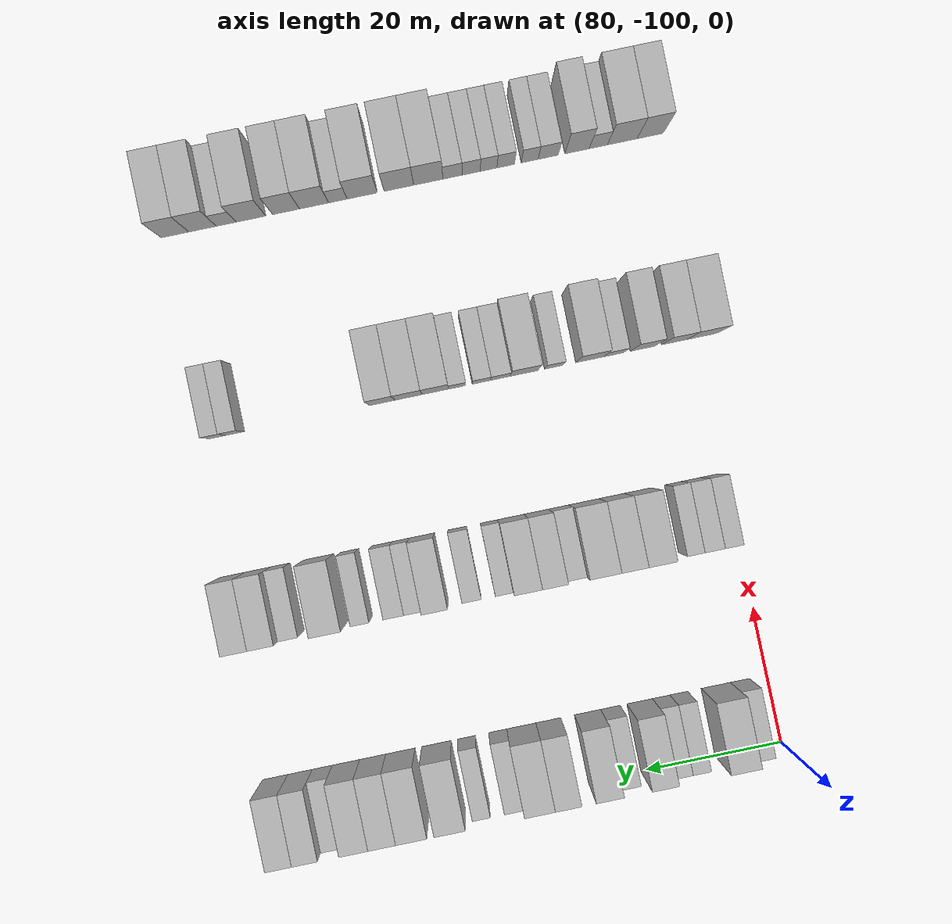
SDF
<sdf version="1.6">
 <world name="default">
  <model name="building_538">
   <static>1</static>
   <pose>85.0000 -95.9426 0 0.000000 0.000000 0.000000</pose>
   <link name="link">
    <pose>0 0 3.00 0 0 0</pose>
    <collision name="collision"><geometry><box><size>10.0000 2.8187 6.0000</size></box></geometry></collision>
    <visual name="visual">
     <cast_shadows>0</cast_shadows>
     <geometry><box><size>10.0000 2.8187 6.0000</size></box></geometry>
     <material>
      <script>
       <uri>model://HANNAS_wall/materials/scripts</uri>
       <uri>model://HANNAS_wall/materials/textures</uri>
       <name>vrc/HANNAS_wall</name>
      </script>
     </material>
    </visual>
   </link>
  </model>
  <model name="building_539">
   <static>1</static>
   <pose>85.0000 -92.3601 0 0.000000 0.000000 0.000000</pose>
   <link name="link">
    <pose>0 0 4.50 0 0 0</pose>
    <collision name="collision"><geometry><box><size>10.0000 4.3463 9.0000</size></box></geometry></collision>
    <visual name="visual">
     <cast_shadows>0</cast_shadows>
     <geometry><box><size>10.0000 4.3463 9.0000</size></box></geometry>
     <material>
      <script>
       <uri>model://HANNAS_wall/materials/scripts</uri>
       <uri>model://HANNAS_wall/materials/textures</uri>
       <name>vrc/HANNAS_wall</name>
      </script>
     </material>
    </visual>
   </link>
  </model>
  <model name="building_540">
   <static>1</static>
   <pose>85.0000 -86.8784 0 0.000000 0.000000 0.000000</pose>
   <link name="link">
    <pose>0 0 3.00 0 0 0</pose>
    <collision name="collision"><geometry><box><size>10.0000 2.6170 6.0000</size></box></geometry></collision>
    <visual name="visual">
     <cast_shadows>0</cast_shadows>
     <geometry><box><size>10.0000 2.6170 6.0000</size></box></geometry>
     <material>
      <script>
       <uri>model://HANNAS_wall/materials/scripts</uri>
       <uri>model://HANNAS_wall/materials/textures</uri>
       <name>vrc/HANNAS_wall</name>
      </script>
     </material>
    </visual>
   </link>
  </model>
  <model name="building_541">
   <static>1</static>
   <pose>85.0000 -84.2810 0 0.000000 0.000000 0.000000</pose>
   <link name="link">
    <pose>0 0 3.00 0 0 0</pose>
    <collision name="collision"><geometry><box><size>10.0000 2.5779 6.0000</size></box></geometry></collision>
    <visual name="visual">
     <cast_shadows>0</cast_shadows>
     <geometry><box><size>10.0000 2.5779 6.0000</size></box></geometry>
     <material>
      <script>
       <uri>model://HANNAS_wall/materials/scripts</uri>
       <uri>model://HANNAS_wall/materials/textures</uri>
       <name>vrc/HANNAS_wall</name>
      </script>
     </material>
    </visual>
   </link>
  </model>
  <model name="building_542">
   <static>1</static>
   <pose>85.0000 -81.0930 0 0.000000 0.000000 0.000000</pose>
   <link name="link">
    <pose>0 0 4.50 0 0 0</pose>
    <collision name="collision"><geometry><box><size>10.0000 3.7981 9.0000</size></box></geometry></collision>
    <visual name="visual">
     <cast_shadows>0</cast_shadows>
     <geometry><box><size>10.0000 3.7981 9.0000</size></box></geometry>
     <material>
      <script>
       <uri>model://HANNAS_wall/materials/scripts</uri>
       <uri>model://HANNAS_wall/materials/textures</uri>
       <name>vrc/HANNAS_wall</name>
      </script>
     </material>
    </visual>
   </link>
  </model>
  <model name="building_543">
   <static>1</static>
   <pose>85.0000 -76.7544 0 0.000000 0.000000 0.000000</pose>
   <link name="link">
    <pose>0 0 3.00 0 0 0</pose>
    <collision name="collision"><geometry><box><size>10.0000 2.8790 6.0000</size></box></geometry></collision>
    <visual name="visual">
     <cast_shadows>0</cast_shadows>
     <geometry><box><size>10.0000 2.8790 6.0000</size></box></geometry>
     <material>
      <script>
       <uri>model://HANNAS_wall/materials/scripts</uri>
       <uri>model://HANNAS_wall/materials/textures</uri>
       <name>vrc/HANNAS_wall</name>
      </script>
     </material>
    </visual>
   </link>
  </model>
  <model name="building_544">
   <static>1</static>
   <pose>85.0000 -73.3544 0 0.000000 0.000000 0.000000</pose>
   <link name="link">
    <pose>0 0 4.50 0 0 0</pose>
    <collision name="collision"><geometry><box><size>10.0000 3.9210 9.0000</size></box></geometry></collision>
    <visual name="visual">
     <cast_shadows>0</cast_shadows>
     <geometry><box><size>10.0000 3.9210 9.0000</size></box></geometry>
     <material>
      <script>
       <uri>model://HANNAS_wall/materials/scripts</uri>
       <uri>model://HANNAS_wall/materials/textures</uri>
       <name>vrc/HANNAS_wall</name>
      </script>
     </material>
    </visual>
   </link>
  </model>
  <model name="building_545">
   <static>1</static>
   <pose>85.0000 -67.5463 0 0.000000 0.000000 0.000000</pose>
   <link name="link">
    <pose>0 0 4.50 0 0 0</pose>
    <collision name="collision"><geometry><box><size>10.0000 3.6951 9.0000</size></box></geometry></collision>
    <visual name="visual">
     <cast_shadows>0</cast_shadows>
     <geometry><box><size>10.0000 3.6951 9.0000</size></box></geometry>
     <material>
      <script>
       <uri>model://HANNAS_wall/materials/scripts</uri>
       <uri>model://HANNAS_wall/materials/textures</uri>
       <name>vrc/HANNAS_wall</name>
      </script>
     </material>
    </visual>
   </link>
  </model>
  <model name="building_546">
   <static>1</static>
   <pose>85.0000 -63.5498 0 0.000000 0.000000 0.000000</pose>
   <link name="link">
    <pose>0 0 4.50 0 0 0</pose>
    <collision name="collision"><geometry><box><size>10.0000 4.2980 9.0000</size></box></geometry></collision>
    <visual name="visual">
     <cast_shadows>0</cast_shadows>
     <geometry><box><size>10.0000 4.2980 9.0000</size></box></geometry>
     <material>
      <script>
       <uri>model://HANNAS_wall/materials/scripts</uri>
       <uri>model://HANNAS_wall/materials/textures</uri>
       <name>vrc/HANNAS_wall</name>
      </script>
     </material>
    </visual>
   </link>
  </model>
  <model name="building_547">
   <static>1</static>
   <pose>85.0000 -60.0626 0 0.000000 0.000000 0.000000</pose>
   <link name="link">
    <pose>0 0 3.00 0 0 0</pose>
    <collision name="collision"><geometry><box><size>10.0000 2.6764 6.0000</size></box></geometry></collision>
    <visual name="visual">
     <cast_shadows>0</cast_shadows>
     <geometry><box><size>10.0000 2.6764 6.0000</size></box></geometry>
     <material>
      <script>
       <uri>model://HANNAS_wall/materials/scripts</uri>
       <uri>model://HANNAS_wall/materials/textures</uri>
       <name>vrc/HANNAS_wall</name>
      </script>
     </material>
    </visual>
   </link>
  </model>
  <model name="building_548">
   <static>1</static>
   <pose>85.0000 -55.4384 0 0.000000 0.000000 0.000000</pose>
   <link name="link">
    <pose>0 0 3.00 0 0 0</pose>
    <collision name="collision"><geometry><box><size>10.0000 2.5721 6.0000</size></box></geometry></collision>
    <visual name="visual">
     <cast_shadows>0</cast_shadows>
     <geometry><box><size>10.0000 2.5721 6.0000</size></box></geometry>
     <material>
      <script>
       <uri>model://HANNAS_wall/materials/scripts</uri>
       <uri>model://HANNAS_wall/materials/textures</uri>
       <name>vrc/HANNAS_wall</name>
      </script>
     </material>
    </visual>
   </link>
  </model>
  <model name="building_549">
   <static>1</static>
   <pose>85.0000 -50.9713 0 0.000000 0.000000 0.000000</pose>
   <link name="link">
    <pose>0 0 4.50 0 0 0</pose>
    <collision name="collision"><geometry><box><size>10.0000 4.3620 9.0000</size></box></geometry></collision>
    <visual name="visual">
     <cast_shadows>0</cast_shadows>
     <geometry><box><size>10.0000 4.3620 9.0000</size></box></geometry>
     <material>
      <script>
       <uri>model://HANNAS_wall/materials/scripts</uri>
       <uri>model://HANNAS_wall/materials/textures</uri>
       <name>vrc/HANNAS_wall</name>
      </script>
     </material>
    </visual>
   </link>
  </model>
  <model name="building_550">
   <static>1</static>
   <pose>85.0000 -45.6228 0 0.000000 0.000000 0.000000</pose>
   <link name="link">
    <pose>0 0 4.50 0 0 0</pose>
    <collision name="collision"><geometry><box><size>10.0000 4.3351 9.0000</size></box></geometry></collision>
    <visual name="visual">
     <cast_shadows>0</cast_shadows>
     <geometry><box><size>10.0000 4.3351 9.0000</size></box></geometry>
     <material>
      <script>
       <uri>model://HANNAS_wall/materials/scripts</uri>
       <uri>model://HANNAS_wall/materials/textures</uri>
       <name>vrc/HANNAS_wall</name>
      </script>
     </material>
    </visual>
   </link>
  </model>
  <model name="building_551">
   <static>1</static>
   <pose>85.0000 -41.5252 0 0.000000 0.000000 0.000000</pose>
   <link name="link">
    <pose>0 0 4.50 0 0 0</pose>
    <collision name="collision"><geometry><box><size>10.0000 3.8601 9.0000</size></box></geometry></collision>
    <visual name="visual">
     <cast_shadows>0</cast_shadows>
     <geometry><box><size>10.0000 3.8601 9.0000</size></box></geometry>
     <material>
      <script>
       <uri>model://HANNAS_wall/materials/scripts</uri>
       <uri>model://HANNAS_wall/materials/textures</uri>
       <name>vrc/HANNAS_wall</name>
      </script>
     </material>
    </visual>
   </link>
  </model>
  <model name="building_552">
   <static>1</static>
   <pose>85.0000 -37.5727 0 0.000000 0.000000 0.000000</pose>
   <link name="link">
    <pose>0 0 4.50 0 0 0</pose>
    <collision name="collision"><geometry><box><size>10.0000 4.0448 9.0000</size></box></geometry></collision>
    <visual name="visual">
     <cast_shadows>0</cast_shadows>
     <geometry><box><size>10.0000 4.0448 9.0000</size></box></geometry>
     <material>
      <script>
       <uri>model://HANNAS_wall/materials/scripts</uri>
       <uri>model://HANNAS_wall/materials/textures</uri>
       <name>vrc/HANNAS_wall</name>
      </script>
     </material>
    </visual>
   </link>
  </model>
  <model name="building_553">
   <static>1</static>
   <pose>85.0000 -34.0649 0 0.000000 0.000000 0.000000</pose>
   <link name="link">
    <pose>0 0 3.00 0 0 0</pose>
    <collision name="collision"><geometry><box><size>10.0000 2.9709 6.0000</size></box></geometry></collision>
    <visual name="visual">
     <cast_shadows>0</cast_shadows>
     <geometry><box><size>10.0000 2.9709 6.0000</size></box></geometry>
     <material>
      <script>
       <uri>model://HANNAS_wall/materials/scripts</uri>
       <uri>model://HANNAS_wall/materials/textures</uri>
       <name>vrc/HANNAS_wall</name>
      </script>
     </material>
    </visual>
   </link>
  </model>
  <model name="building_554">
   <static>1</static>
   <pose>85.0000 -30.7781 0 0.000000 0.000000 0.000000</pose>
   <link name="link">
    <pose>0 0 4.50 0 0 0</pose>
    <collision name="collision"><geometry><box><size>10.0000 3.6029 9.0000</size></box></geometry></collision>
    <visual name="visual">
     <cast_shadows>0</cast_shadows>
     <geometry><box><size>10.0000 3.6029 9.0000</size></box></geometry>
     <material>
      <script>
       <uri>model://HANNAS_wall/materials/scripts</uri>
       <uri>model://HANNAS_wall/materials/textures</uri>
       <name>vrc/HANNAS_wall</name>
      </script>
     </material>
    </visual>
   </link>
  </model>
  <model name="building_555">
   <static>1</static>
   <pose>85.0000 -27.1032 0 0.000000 0.000000 0.000000</pose>
   <link name="link">
    <pose>0 0 4.50 0 0 0</pose>
    <collision name="collision"><geometry><box><size>10.0000 3.7470 9.0000</size></box></geometry></collision>
    <visual name="visual">
     <cast_shadows>0</cast_shadows>
     <geometry><box><size>10.0000 3.7470 9.0000</size></box></geometry>
     <material>
      <script>
       <uri>model://HANNAS_wall/materials/scripts</uri>
       <uri>model://HANNAS_wall/materials/textures</uri>
       <name>vrc/HANNAS_wall</name>
      </script>
     </material>
    </visual>
   </link>
  </model>
  <model name="building_773">
   <static>1</static>
   <pose>115.0000 -97.7180 0 0.000000 0.000000 0.000000</pose>
   <link name="link">
    <pose>0 0 3.00 0 0 0</pose>
    <collision name="collision"><geometry><box><size>10.0000 2.6786 6.0000</size></box></geometry></collision>
    <visual name="visual">
     <cast_shadows>0</cast_shadows>
     <geometry><box><size>10.0000 2.6786 6.0000</size></box></geometry>
     <material>
      <script>
       <uri>model://HANNAS_wall/materials/scripts</uri>
       <uri>model://HANNAS_wall/materials/textures</uri>
       <name>vrc/HANNAS_wall</name>
      </script>
     </material>
    </visual>
   </link>
  </model>
  <model name="building_774">
   <static>1</static>
   <pose>115.0000 -94.9387 0 0.000000 0.000000 0.000000</pose>
   <link name="link">
    <pose>0 0 3.00 0 0 0</pose>
    <collision name="collision"><geometry><box><size>10.0000 2.8800 6.0000</size></box></geometry></collision>
    <visual name="visual">
     <cast_shadows>0</cast_shadows>
     <geometry><box><size>10.0000 2.8800 6.0000</size></box></geometry>
     <material>
      <script>
       <uri>model://HANNAS_wall/materials/scripts</uri>
       <uri>model://HANNAS_wall/materials/textures</uri>
       <name>vrc/HANNAS_wall</name>
      </script>
     </material>
    </visual>
   </link>
  </model>
  <model name="building_775">
   <static>1</static>
   <pose>115.0000 -92.2442 0 0.000000 0.000000 0.000000</pose>
   <link name="link">
    <pose>0 0 3.00 0 0 0</pose>
    <collision name="collision"><geometry><box><size>10.0000 2.5091 6.0000</size></box></geometry></collision>
    <visual name="visual">
     <cast_shadows>0</cast_shadows>
     <geometry><box><size>10.0000 2.5091 6.0000</size></box></geometry>
     <material>
      <script>
       <uri>model://HANNAS_wall/materials/scripts</uri>
       <uri>model://HANNAS_wall/materials/textures</uri>
       <name>vrc/HANNAS_wall</name>
      </script>
     </material>
    </visual>
   </link>
  </model>
  <model name="building_776">
   <static>1</static>
   <pose>115.0000 -86.9856 0 0.000000 0.000000 0.000000</pose>
   <link name="link">
    <pose>0 0 4.50 0 0 0</pose>
    <collision name="collision"><geometry><box><size>10.0000 4.0080 9.0000</size></box></geometry></collision>
    <visual name="visual">
     <cast_shadows>0</cast_shadows>
     <geometry><box><size>10.0000 4.0080 9.0000</size></box></geometry>
     <material>
      <script>
       <uri>model://HANNAS_wall/materials/scripts</uri>
       <uri>model://HANNAS_wall/materials/textures</uri>
       <name>vrc/HANNAS_wall</name>
      </script>
     </material>
    </visual>
   </link>
  </model>
  <model name="building_777">
   <static>1</static>
   <pose>115.0000 -83.0944 0 0.000000 0.000000 0.000000</pose>
   <link name="link">
    <pose>0 0 4.50 0 0 0</pose>
    <collision name="collision"><geometry><box><size>10.0000 3.7743 9.0000</size></box></geometry></collision>
    <visual name="visual">
     <cast_shadows>0</cast_shadows>
     <geometry><box><size>10.0000 3.7743 9.0000</size></box></geometry>
     <material>
      <script>
       <uri>model://HANNAS_wall/materials/scripts</uri>
       <uri>model://HANNAS_wall/materials/textures</uri>
       <name>vrc/HANNAS_wall</name>
      </script>
     </material>
    </visual>
   </link>
  </model>
  <model name="building_778">
   <static>1</static>
   <pose>115.0000 -78.9845 0 0.000000 0.000000 0.000000</pose>
   <link name="link">
    <pose>0 0 4.50 0 0 0</pose>
    <collision name="collision"><geometry><box><size>10.0000 4.4456 9.0000</size></box></geometry></collision>
    <visual name="visual">
     <cast_shadows>0</cast_shadows>
     <geometry><box><size>10.0000 4.4456 9.0000</size></box></geometry>
     <material>
      <script>
       <uri>model://HANNAS_wall/materials/scripts</uri>
       <uri>model://HANNAS_wall/materials/textures</uri>
       <name>vrc/HANNAS_wall</name>
      </script>
     </material>
    </visual>
   </link>
  </model>
  <model name="building_779">
   <static>1</static>
   <pose>115.0000 -75.2689 0 0.000000 0.000000 0.000000</pose>
   <link name="link">
    <pose>0 0 3.00 0 0 0</pose>
    <collision name="collision"><geometry><box><size>10.0000 2.9855 6.0000</size></box></geometry></collision>
    <visual name="visual">
     <cast_shadows>0</cast_shadows>
     <geometry><box><size>10.0000 2.9855 6.0000</size></box></geometry>
     <material>
      <script>
       <uri>model://HANNAS_wall/materials/scripts</uri>
       <uri>model://HANNAS_wall/materials/textures</uri>
       <name>vrc/HANNAS_wall</name>
      </script>
     </material>
    </visual>
   </link>
  </model>
  <model name="building_780">
   <static>1</static>
   <pose>115.0000 -71.9702 0 0.000000 0.000000 0.000000</pose>
   <link name="link">
    <pose>0 0 4.50 0 0 0</pose>
    <collision name="collision"><geometry><box><size>10.0000 3.6118 9.0000</size></box></geometry></collision>
    <visual name="visual">
     <cast_shadows>0</cast_shadows>
     <geometry><box><size>10.0000 3.6118 9.0000</size></box></geometry>
     <material>
      <script>
       <uri>model://HANNAS_wall/materials/scripts</uri>
       <uri>model://HANNAS_wall/materials/textures</uri>
       <name>vrc/HANNAS_wall</name>
      </script>
     </material>
    </visual>
   </link>
  </model>
  <model name="building_781">
   <static>1</static>
   <pose>115.0000 -68.1978 0 0.000000 0.000000 0.000000</pose>
   <link name="link">
    <pose>0 0 4.50 0 0 0</pose>
    <collision name="collision"><geometry><box><size>10.0000 3.9331 9.0000</size></box></geometry></collision>
    <visual name="visual">
     <cast_shadows>0</cast_shadows>
     <geometry><box><size>10.0000 3.9331 9.0000</size></box></geometry>
     <material>
      <script>
       <uri>model://HANNAS_wall/materials/scripts</uri>
       <uri>model://HANNAS_wall/materials/textures</uri>
       <name>vrc/HANNAS_wall</name>
      </script>
     </material>
    </visual>
   </link>
  </model>
  <model name="building_782">
   <static>1</static>
   <pose>115.0000 -64.9550 0 0.000000 0.000000 0.000000</pose>
   <link name="link">
    <pose>0 0 3.00 0 0 0</pose>
    <collision name="collision"><geometry><box><size>10.0000 2.5523 6.0000</size></box></geometry></collision>
    <visual name="visual">
     <cast_shadows>0</cast_shadows>
     <geometry><box><size>10.0000 2.5523 6.0000</size></box></geometry>
     <material>
      <script>
       <uri>model://HANNAS_wall/materials/scripts</uri>
       <uri>model://HANNAS_wall/materials/textures</uri>
       <name>vrc/HANNAS_wall</name>
      </script>
     </material>
    </visual>
   </link>
  </model>
  <model name="building_783">
   <static>1</static>
   <pose>115.0000 -60.3011 0 0.000000 0.000000 0.000000</pose>
   <link name="link">
    <pose>0 0 3.00 0 0 0</pose>
    <collision name="collision"><geometry><box><size>10.0000 2.7554 6.0000</size></box></geometry></collision>
    <visual name="visual">
     <cast_shadows>0</cast_shadows>
     <geometry><box><size>10.0000 2.7554 6.0000</size></box></geometry>
     <material>
      <script>
       <uri>model://HANNAS_wall/materials/scripts</uri>
       <uri>model://HANNAS_wall/materials/textures</uri>
       <name>vrc/HANNAS_wall</name>
      </script>
     </material>
    </visual>
   </link>
  </model>
  <model name="building_784">
   <static>1</static>
   <pose>115.0000 -55.0847 0 0.000000 0.000000 0.000000</pose>
   <link name="link">
    <pose>0 0 4.50 0 0 0</pose>
    <collision name="collision"><geometry><box><size>10.0000 3.6774 9.0000</size></box></geometry></collision>
    <visual name="visual">
     <cast_shadows>0</cast_shadows>
     <geometry><box><size>10.0000 3.6774 9.0000</size></box></geometry>
     <material>
      <script>
       <uri>model://HANNAS_wall/materials/scripts</uri>
       <uri>model://HANNAS_wall/materials/textures</uri>
       <name>vrc/HANNAS_wall</name>
      </script>
     </material>
    </visual>
   </link>
  </model>
  <model name="building_785">
   <static>1</static>
   <pose>115.0000 -51.9403 0 0.000000 0.000000 0.000000</pose>
   <link name="link">
    <pose>0 0 3.00 0 0 0</pose>
    <collision name="collision"><geometry><box><size>10.0000 2.6114 6.0000</size></box></geometry></collision>
    <visual name="visual">
     <cast_shadows>0</cast_shadows>
     <geometry><box><size>10.0000 2.6114 6.0000</size></box></geometry>
     <material>
      <script>
       <uri>model://HANNAS_wall/materials/scripts</uri>
       <uri>model://HANNAS_wall/materials/textures</uri>
       <name>vrc/HANNAS_wall</name>
      </script>
     </material>
    </visual>
   </link>
  </model>
  <model name="building_786">
   <static>1</static>
   <pose>115.0000 -49.1627 0 0.000000 0.000000 0.000000</pose>
   <link name="link">
    <pose>0 0 3.00 0 0 0</pose>
    <collision name="collision"><geometry><box><size>10.0000 2.9439 6.0000</size></box></geometry></collision>
    <visual name="visual">
     <cast_shadows>0</cast_shadows>
     <geometry><box><size>10.0000 2.9439 6.0000</size></box></geometry>
     <material>
      <script>
       <uri>model://HANNAS_wall/materials/scripts</uri>
       <uri>model://HANNAS_wall/materials/textures</uri>
       <name>vrc/HANNAS_wall</name>
      </script>
     </material>
    </visual>
   </link>
  </model>
  <model name="building_787">
   <static>1</static>
   <pose>115.0000 -44.3593 0 0.000000 0.000000 0.000000</pose>
   <link name="link">
    <pose>0 0 3.00 0 0 0</pose>
    <collision name="collision"><geometry><box><size>10.0000 2.6628 6.0000</size></box></geometry></collision>
    <visual name="visual">
     <cast_shadows>0</cast_shadows>
     <geometry><box><size>10.0000 2.6628 6.0000</size></box></geometry>
     <material>
      <script>
       <uri>model://HANNAS_wall/materials/scripts</uri>
       <uri>model://HANNAS_wall/materials/textures</uri>
       <name>vrc/HANNAS_wall</name>
      </script>
     </material>
    </visual>
   </link>
  </model>
  <model name="building_788">
   <static>1</static>
   <pose>115.0000 -39.7882 0 0.000000 0.000000 0.000000</pose>
   <link name="link">
    <pose>0 0 4.50 0 0 0</pose>
    <collision name="collision"><geometry><box><size>10.0000 4.4795 9.0000</size></box></geometry></collision>
    <visual name="visual">
     <cast_shadows>0</cast_shadows>
     <geometry><box><size>10.0000 4.4795 9.0000</size></box></geometry>
     <material>
      <script>
       <uri>model://HANNAS_wall/materials/scripts</uri>
       <uri>model://HANNAS_wall/materials/textures</uri>
       <name>vrc/HANNAS_wall</name>
      </script>
     </material>
    </visual>
   </link>
  </model>
  <model name="building_789">
   <static>1</static>
   <pose>115.0000 -34.1197 0 0.000000 0.000000 0.000000</pose>
   <link name="link">
    <pose>0 0 3.00 0 0 0</pose>
    <collision name="collision"><geometry><box><size>10.0000 2.8576 6.0000</size></box></geometry></collision>
    <visual name="visual">
     <cast_shadows>0</cast_shadows>
     <geometry><box><size>10.0000 2.8576 6.0000</size></box></geometry>
     <material>
      <script>
       <uri>model://HANNAS_wall/materials/scripts</uri>
       <uri>model://HANNAS_wall/materials/textures</uri>
       <name>vrc/HANNAS_wall</name>
      </script>
     </material>
    </visual>
   </link>
  </model>
  <model name="building_790">
   <static>1</static>
   <pose>115.0000 -30.8384 0 0.000000 0.000000 0.000000</pose>
   <link name="link">
    <pose>0 0 4.50 0 0 0</pose>
    <collision name="collision"><geometry><box><size>10.0000 3.7049 9.0000</size></box></geometry></collision>
    <visual name="visual">
     <cast_shadows>0</cast_shadows>
     <geometry><box><size>10.0000 3.7049 9.0000</size></box></geometry>
     <material>
      <script>
       <uri>model://HANNAS_wall/materials/scripts</uri>
       <uri>model://HANNAS_wall/materials/textures</uri>
       <name>vrc/HANNAS_wall</name>
      </script>
     </material>
    </visual>
   </link>
  </model>
  <model name="building_791">
   <static>1</static>
   <pose>115.0000 -27.1062 0 0.000000 0.000000 0.000000</pose>
   <link name="link">
    <pose>0 0 4.50 0 0 0</pose>
    <collision name="collision"><geometry><box><size>10.0000 3.7596 9.0000</size></box></geometry></collision>
    <visual name="visual">
     <cast_shadows>0</cast_shadows>
     <geometry><box><size>10.0000 3.7596 9.0000</size></box></geometry>
     <material>
      <script>
       <uri>model://HANNAS_wall/materials/scripts</uri>
       <uri>model://HANNAS_wall/materials/textures</uri>
       <name>vrc/HANNAS_wall</name>
      </script>
     </material>
    </visual>
   </link>
  </model>
  <model name="building_987">
   <static>1</static>
   <pose>145.0000 -100.6650 0 0.000000 0.000000 0.000000</pose>
   <link name="link">
    <pose>0 0 4.50 0 0 0</pose>
    <collision name="collision"><geometry><box><size>10.0000 4.4406 9.0000</size></box></geometry></collision>
    <visual name="visual">
     <cast_shadows>0</cast_shadows>
     <geometry><box><size>10.0000 4.4406 9.0000</size></box></geometry>
     <material>
      <script>
       <uri>model://HANNAS_wall/materials/scripts</uri>
       <uri>model://HANNAS_wall/materials/textures</uri>
       <name>vrc/HANNAS_wall</name>
      </script>
     </material>
    </visual>
   </link>
  </model>
  <model name="building_988">
   <static>1</static>
   <pose>145.0000 -96.5833 0 0.000000 0.000000 0.000000</pose>
   <link name="link">
    <pose>0 0 4.50 0 0 0</pose>
    <collision name="collision"><geometry><box><size>10.0000 3.7227 9.0000</size></box></geometry></collision>
    <visual name="visual">
     <cast_shadows>0</cast_shadows>
     <geometry><box><size>10.0000 3.7227 9.0000</size></box></geometry>
     <material>
      <script>
       <uri>model://HANNAS_wall/materials/scripts</uri>
       <uri>model://HANNAS_wall/materials/textures</uri>
       <name>vrc/HANNAS_wall</name>
      </script>
     </material>
    </visual>
   </link>
  </model>
  <model name="building_989">
   <static>1</static>
   <pose>145.0000 -91.9065 0 0.000000 0.000000 0.000000</pose>
   <link name="link">
    <pose>0 0 4.50 0 0 0</pose>
    <collision name="collision"><geometry><box><size>10.0000 3.6307 9.0000</size></box></geometry></collision>
    <visual name="visual">
     <cast_shadows>0</cast_shadows>
     <geometry><box><size>10.0000 3.6307 9.0000</size></box></geometry>
     <material>
      <script>
       <uri>model://HANNAS_wall/materials/scripts</uri>
       <uri>model://HANNAS_wall/materials/textures</uri>
       <name>vrc/HANNAS_wall</name>
      </script>
     </material>
    </visual>
   </link>
  </model>
  <model name="building_990">
   <static>1</static>
   <pose>145.0000 -87.6062 0 0.000000 0.000000 0.000000</pose>
   <link name="link">
    <pose>0 0 3.00 0 0 0</pose>
    <collision name="collision"><geometry><box><size>10.0000 2.9700 6.0000</size></box></geometry></collision>
    <visual name="visual">
     <cast_shadows>0</cast_shadows>
     <geometry><box><size>10.0000 2.9700 6.0000</size></box></geometry>
     <material>
      <script>
       <uri>model://HANNAS_wall/materials/scripts</uri>
       <uri>model://HANNAS_wall/materials/textures</uri>
       <name>vrc/HANNAS_wall</name>
      </script>
     </material>
    </visual>
   </link>
  </model>
  <model name="building_991">
   <static>1</static>
   <pose>145.0000 -84.0649 0 0.000000 0.000000 0.000000</pose>
   <link name="link">
    <pose>0 0 4.50 0 0 0</pose>
    <collision name="collision"><geometry><box><size>10.0000 4.1124 9.0000</size></box></geometry></collision>
    <visual name="visual">
     <cast_shadows>0</cast_shadows>
     <geometry><box><size>10.0000 4.1124 9.0000</size></box></geometry>
     <material>
      <script>
       <uri>model://HANNAS_wall/materials/scripts</uri>
       <uri>model://HANNAS_wall/materials/textures</uri>
       <name>vrc/HANNAS_wall</name>
      </script>
     </material>
    </visual>
   </link>
  </model>
  <model name="building_992">
   <static>1</static>
   <pose>145.0000 -78.6968 0 0.000000 0.000000 0.000000</pose>
   <link name="link">
    <pose>0 0 3.00 0 0 0</pose>
    <collision name="collision"><geometry><box><size>10.0000 2.6238 6.0000</size></box></geometry></collision>
    <visual name="visual">
     <cast_shadows>0</cast_shadows>
     <geometry><box><size>10.0000 2.6238 6.0000</size></box></geometry>
     <material>
      <script>
       <uri>model://HANNAS_wall/materials/scripts</uri>
       <uri>model://HANNAS_wall/materials/textures</uri>
       <name>vrc/HANNAS_wall</name>
      </script>
     </material>
    </visual>
   </link>
  </model>
  <model name="building_993">
   <static>1</static>
   <pose>145.0000 -74.3082 0 0.000000 0.000000 0.000000</pose>
   <link name="link">
    <pose>0 0 4.50 0 0 0</pose>
    <collision name="collision"><geometry><box><size>10.0000 4.1534 9.0000</size></box></geometry></collision>
    <visual name="visual">
     <cast_shadows>0</cast_shadows>
     <geometry><box><size>10.0000 4.1534 9.0000</size></box></geometry>
     <material>
      <script>
       <uri>model://HANNAS_wall/materials/scripts</uri>
       <uri>model://HANNAS_wall/materials/textures</uri>
       <name>vrc/HANNAS_wall</name>
      </script>
     </material>
    </visual>
   </link>
  </model>
  <model name="building_994">
   <static>1</static>
   <pose>145.0000 -70.7814 0 0.000000 0.000000 0.000000</pose>
   <link name="link">
    <pose>0 0 3.00 0 0 0</pose>
    <collision name="collision"><geometry><box><size>10.0000 2.9001 6.0000</size></box></geometry></collision>
    <visual name="visual">
     <cast_shadows>0</cast_shadows>
     <geometry><box><size>10.0000 2.9001 6.0000</size></box></geometry>
     <material>
      <script>
       <uri>model://HANNAS_wall/materials/scripts</uri>
       <uri>model://HANNAS_wall/materials/textures</uri>
       <name>vrc/HANNAS_wall</name>
      </script>
     </material>
    </visual>
   </link>
  </model>
  <model name="building_995">
   <static>1</static>
   <pose>145.0000 -68.0073 0 0.000000 0.000000 0.000000</pose>
   <link name="link">
    <pose>0 0 3.00 0 0 0</pose>
    <collision name="collision"><geometry><box><size>10.0000 2.6481 6.0000</size></box></geometry></collision>
    <visual name="visual">
     <cast_shadows>0</cast_shadows>
     <geometry><box><size>10.0000 2.6481 6.0000</size></box></geometry>
     <material>
      <script>
       <uri>model://HANNAS_wall/materials/scripts</uri>
       <uri>model://HANNAS_wall/materials/textures</uri>
       <name>vrc/HANNAS_wall</name>
      </script>
     </material>
    </visual>
   </link>
  </model>
  <model name="building_996">
   <static>1</static>
   <pose>145.0000 -64.4277 0 0.000000 0.000000 0.000000</pose>
   <link name="link">
    <pose>0 0 3.00 0 0 0</pose>
    <collision name="collision"><geometry><box><size>10.0000 2.5113 6.0000</size></box></geometry></collision>
    <visual name="visual">
     <cast_shadows>0</cast_shadows>
     <geometry><box><size>10.0000 2.5113 6.0000</size></box></geometry>
     <material>
      <script>
       <uri>model://HANNAS_wall/materials/scripts</uri>
       <uri>model://HANNAS_wall/materials/textures</uri>
       <name>vrc/HANNAS_wall</name>
      </script>
     </material>
    </visual>
   </link>
  </model>
  <model name="building_997">
   <static>1</static>
   <pose>145.0000 -61.2456 0 0.000000 0.000000 0.000000</pose>
   <link name="link">
    <pose>0 0 4.50 0 0 0</pose>
    <collision name="collision"><geometry><box><size>10.0000 3.8528 9.0000</size></box></geometry></collision>
    <visual name="visual">
     <cast_shadows>0</cast_shadows>
     <geometry><box><size>10.0000 3.8528 9.0000</size></box></geometry>
     <material>
      <script>
       <uri>model://HANNAS_wall/materials/scripts</uri>
       <uri>model://HANNAS_wall/materials/textures</uri>
       <name>vrc/HANNAS_wall</name>
      </script>
     </material>
    </visual>
   </link>
  </model>
  <model name="building_998">
   <static>1</static>
   <pose>145.0000 -57.3016 0 0.000000 0.000000 0.000000</pose>
   <link name="link">
    <pose>0 0 4.50 0 0 0</pose>
    <collision name="collision"><geometry><box><size>10.0000 4.0352 9.0000</size></box></geometry></collision>
    <visual name="visual">
     <cast_shadows>0</cast_shadows>
     <geometry><box><size>10.0000 4.0352 9.0000</size></box></geometry>
     <material>
      <script>
       <uri>model://HANNAS_wall/materials/scripts</uri>
       <uri>model://HANNAS_wall/materials/textures</uri>
       <name>vrc/HANNAS_wall</name>
      </script>
     </material>
    </visual>
   </link>
  </model>
  <model name="building_999">
   <static>1</static>
   <pose>145.0000 -53.4034 0 0.000000 0.000000 0.000000</pose>
   <link name="link">
    <pose>0 0 4.50 0 0 0</pose>
    <collision name="collision"><geometry><box><size>10.0000 3.7613 9.0000</size></box></geometry></collision>
    <visual name="visual">
     <cast_shadows>0</cast_shadows>
     <geometry><box><size>10.0000 3.7613 9.0000</size></box></geometry>
     <material>
      <script>
       <uri>model://HANNAS_wall/materials/scripts</uri>
       <uri>model://HANNAS_wall/materials/textures</uri>
       <name>vrc/HANNAS_wall</name>
      </script>
     </material>
    </visual>
   </link>
  </model>
  <model name="building_1000">
   <static>1</static>
   <pose>145.0000 -31.6532 0 0.000000 0.000000 0.000000</pose>
   <link name="link">
    <pose>0 0 3.00 0 0 0</pose>
    <collision name="collision"><geometry><box><size>10.0000 2.5797 6.0000</size></box></geometry></collision>
    <visual name="visual">
     <cast_shadows>0</cast_shadows>
     <geometry><box><size>10.0000 2.5797 6.0000</size></box></geometry>
     <material>
      <script>
       <uri>model://HANNAS_wall/materials/scripts</uri>
       <uri>model://HANNAS_wall/materials/textures</uri>
       <name>vrc/HANNAS_wall</name>
      </script>
     </material>
    </visual>
   </link>
  </model>
  <model name="building_1001">
   <static>1</static>
   <pose>145.0000 -29.0986 0 0.000000 0.000000 0.000000</pose>
   <link name="link">
    <pose>0 0 3.00 0 0 0</pose>
    <collision name="collision"><geometry><box><size>10.0000 2.5296 6.0000</size></box></geometry></collision>
    <visual name="visual">
     <cast_shadows>0</cast_shadows>
     <geometry><box><size>10.0000 2.5296 6.0000</size></box></geometry>
     <material>
      <script>
       <uri>model://HANNAS_wall/materials/scripts</uri>
       <uri>model://HANNAS_wall/materials/textures</uri>
       <name>vrc/HANNAS_wall</name>
      </script>
     </material>
    </visual>
   </link>
  </model>
  <model name="building_1218">
   <static>1</static>
   <pose>175.0000 -99.2740 0 0.000000 0.000000 0.000000</pose>
   <link name="link">
    <pose>0 0 4.50 0 0 0</pose>
    <collision name="collision"><geometry><box><size>10.0000 3.8927 9.0000</size></box></geometry></collision>
    <visual name="visual">
     <cast_shadows>0</cast_shadows>
     <geometry><box><size>10.0000 3.8927 9.0000</size></box></geometry>
     <material>
      <script>
       <uri>model://HANNAS_wall/materials/scripts</uri>
       <uri>model://HANNAS_wall/materials/textures</uri>
       <name>vrc/HANNAS_wall</name>
      </script>
     </material>
    </visual>
   </link>
  </model>
  <model name="building_1219">
   <static>1</static>
   <pose>175.0000 -95.1245 0 0.000000 0.000000 0.000000</pose>
   <link name="link">
    <pose>0 0 4.50 0 0 0</pose>
    <collision name="collision"><geometry><box><size>10.0000 4.4062 9.0000</size></box></geometry></collision>
    <visual name="visual">
     <cast_shadows>0</cast_shadows>
     <geometry><box><size>10.0000 4.4062 9.0000</size></box></geometry>
     <material>
      <script>
       <uri>model://HANNAS_wall/materials/scripts</uri>
       <uri>model://HANNAS_wall/materials/textures</uri>
       <name>vrc/HANNAS_wall</name>
      </script>
     </material>
    </visual>
   </link>
  </model>
  <model name="building_1220">
   <static>1</static>
   <pose>175.0000 -91.5797 0 0.000000 0.000000 0.000000</pose>
   <link name="link">
    <pose>0 0 3.00 0 0 0</pose>
    <collision name="collision"><geometry><box><size>10.0000 2.6835 6.0000</size></box></geometry></collision>
    <visual name="visual">
     <cast_shadows>0</cast_shadows>
     <geometry><box><size>10.0000 2.6835 6.0000</size></box></geometry>
     <material>
      <script>
       <uri>model://HANNAS_wall/materials/scripts</uri>
       <uri>model://HANNAS_wall/materials/textures</uri>
       <name>vrc/HANNAS_wall</name>
      </script>
     </material>
    </visual>
   </link>
  </model>
  <model name="building_1221">
   <static>1</static>
   <pose>175.0000 -88.4360 0 0.000000 0.000000 0.000000</pose>
   <link name="link">
    <pose>0 0 4.50 0 0 0</pose>
    <collision name="collision"><geometry><box><size>10.0000 3.6038 9.0000</size></box></geometry></collision>
    <visual name="visual">
     <cast_shadows>0</cast_shadows>
     <geometry><box><size>10.0000 3.6038 9.0000</size></box></geometry>
     <material>
      <script>
       <uri>model://HANNAS_wall/materials/scripts</uri>
       <uri>model://HANNAS_wall/materials/textures</uri>
       <name>vrc/HANNAS_wall</name>
      </script>
     </material>
    </visual>
   </link>
  </model>
  <model name="building_1222">
   <static>1</static>
   <pose>175.0000 -84.1496 0 0.000000 0.000000 0.000000</pose>
   <link name="link">
    <pose>0 0 3.00 0 0 0</pose>
    <collision name="collision"><geometry><box><size>10.0000 2.9689 6.0000</size></box></geometry></collision>
    <visual name="visual">
     <cast_shadows>0</cast_shadows>
     <geometry><box><size>10.0000 2.9689 6.0000</size></box></geometry>
     <material>
      <script>
       <uri>model://HANNAS_wall/materials/scripts</uri>
       <uri>model://HANNAS_wall/materials/textures</uri>
       <name>vrc/HANNAS_wall</name>
      </script>
     </material>
    </visual>
   </link>
  </model>
  <model name="building_1223">
   <static>1</static>
   <pose>175.0000 -81.4164 0 0.000000 0.000000 0.000000</pose>
   <link name="link">
    <pose>0 0 3.00 0 0 0</pose>
    <collision name="collision"><geometry><box><size>10.0000 2.4974 6.0000</size></box></geometry></collision>
    <visual name="visual">
     <cast_shadows>0</cast_shadows>
     <geometry><box><size>10.0000 2.4974 6.0000</size></box></geometry>
     <material>
      <script>
       <uri>model://HANNAS_wall/materials/scripts</uri>
       <uri>model://HANNAS_wall/materials/textures</uri>
       <name>vrc/HANNAS_wall</name>
      </script>
     </material>
    </visual>
   </link>
  </model>
  <model name="building_1224">
   <static>1</static>
   <pose>175.0000 -77.8661 0 0.000000 0.000000 0.000000</pose>
   <link name="link">
    <pose>0 0 3.00 0 0 0</pose>
    <collision name="collision"><geometry><box><size>10.0000 2.6032 6.0000</size></box></geometry></collision>
    <visual name="visual">
     <cast_shadows>0</cast_shadows>
     <geometry><box><size>10.0000 2.6032 6.0000</size></box></geometry>
     <material>
      <script>
       <uri>model://HANNAS_wall/materials/scripts</uri>
       <uri>model://HANNAS_wall/materials/textures</uri>
       <name>vrc/HANNAS_wall</name>
      </script>
     </material>
    </visual>
   </link>
  </model>
  <model name="building_1225">
   <static>1</static>
   <pose>175.0000 -75.3314 0 0.000000 0.000000 0.000000</pose>
   <link name="link">
    <pose>0 0 3.00 0 0 0</pose>
    <collision name="collision"><geometry><box><size>10.0000 2.4662 6.0000</size></box></geometry></collision>
    <visual name="visual">
     <cast_shadows>0</cast_shadows>
     <geometry><box><size>10.0000 2.4662 6.0000</size></box></geometry>
     <material>
      <script>
       <uri>model://HANNAS_wall/materials/scripts</uri>
       <uri>model://HANNAS_wall/materials/textures</uri>
       <name>vrc/HANNAS_wall</name>
      </script>
     </material>
    </visual>
   </link>
  </model>
  <model name="building_1226">
   <static>1</static>
   <pose>175.0000 -72.7558 0 0.000000 0.000000 0.000000</pose>
   <link name="link">
    <pose>0 0 3.00 0 0 0</pose>
    <collision name="collision"><geometry><box><size>10.0000 2.6850 6.0000</size></box></geometry></collision>
    <visual name="visual">
     <cast_shadows>0</cast_shadows>
     <geometry><box><size>10.0000 2.6850 6.0000</size></box></geometry>
     <material>
      <script>
       <uri>model://HANNAS_wall/materials/scripts</uri>
       <uri>model://HANNAS_wall/materials/textures</uri>
       <name>vrc/HANNAS_wall</name>
      </script>
     </material>
    </visual>
   </link>
  </model>
  <model name="building_1227">
   <static>1</static>
   <pose>175.0000 -69.9837 0 0.000000 0.000000 0.000000</pose>
   <link name="link">
    <pose>0 0 3.00 0 0 0</pose>
    <collision name="collision"><geometry><box><size>10.0000 2.8592 6.0000</size></box></geometry></collision>
    <visual name="visual">
     <cast_shadows>0</cast_shadows>
     <geometry><box><size>10.0000 2.8592 6.0000</size></box></geometry>
     <material>
      <script>
       <uri>model://HANNAS_wall/materials/scripts</uri>
       <uri>model://HANNAS_wall/materials/textures</uri>
       <name>vrc/HANNAS_wall</name>
      </script>
     </material>
    </visual>
   </link>
  </model>
  <model name="building_1228">
   <static>1</static>
   <pose>175.0000 -66.3985 0 0.000000 0.000000 0.000000</pose>
   <link name="link">
    <pose>0 0 4.50 0 0 0</pose>
    <collision name="collision"><geometry><box><size>10.0000 4.3112 9.0000</size></box></geometry></collision>
    <visual name="visual">
     <cast_shadows>0</cast_shadows>
     <geometry><box><size>10.0000 4.3112 9.0000</size></box></geometry>
     <material>
      <script>
       <uri>model://HANNAS_wall/materials/scripts</uri>
       <uri>model://HANNAS_wall/materials/textures</uri>
       <name>vrc/HANNAS_wall</name>
      </script>
     </material>
    </visual>
   </link>
  </model>
  <model name="building_1229">
   <static>1</static>
   <pose>175.0000 -62.0552 0 0.000000 0.000000 0.000000</pose>
   <link name="link">
    <pose>0 0 4.50 0 0 0</pose>
    <collision name="collision"><geometry><box><size>10.0000 4.3753 9.0000</size></box></geometry></collision>
    <visual name="visual">
     <cast_shadows>0</cast_shadows>
     <geometry><box><size>10.0000 4.3753 9.0000</size></box></geometry>
     <material>
      <script>
       <uri>model://HANNAS_wall/materials/scripts</uri>
       <uri>model://HANNAS_wall/materials/textures</uri>
       <name>vrc/HANNAS_wall</name>
      </script>
     </material>
    </visual>
   </link>
  </model>
  <model name="building_1230">
   <static>1</static>
   <pose>175.0000 -56.6299 0 0.000000 0.000000 0.000000</pose>
   <link name="link">
    <pose>0 0 4.50 0 0 0</pose>
    <collision name="collision"><geometry><box><size>10.0000 4.4753 9.0000</size></box></geometry></collision>
    <visual name="visual">
     <cast_shadows>0</cast_shadows>
     <geometry><box><size>10.0000 4.4753 9.0000</size></box></geometry>
     <material>
      <script>
       <uri>model://HANNAS_wall/materials/scripts</uri>
       <uri>model://HANNAS_wall/materials/textures</uri>
       <name>vrc/HANNAS_wall</name>
      </script>
     </material>
    </visual>
   </link>
  </model>
  <model name="building_1231">
   <static>1</static>
   <pose>175.0000 -53.0197 0 0.000000 0.000000 0.000000</pose>
   <link name="link">
    <pose>0 0 3.00 0 0 0</pose>
    <collision name="collision"><geometry><box><size>10.0000 2.7451 6.0000</size></box></geometry></collision>
    <visual name="visual">
     <cast_shadows>0</cast_shadows>
     <geometry><box><size>10.0000 2.7451 6.0000</size></box></geometry>
     <material>
      <script>
       <uri>model://HANNAS_wall/materials/scripts</uri>
       <uri>model://HANNAS_wall/materials/textures</uri>
       <name>vrc/HANNAS_wall</name>
      </script>
     </material>
    </visual>
   </link>
  </model>
  <model name="building_1232">
   <static>1</static>
   <pose>175.0000 -49.4899 0 0.000000 0.000000 0.000000</pose>
   <link name="link">
    <pose>0 0 4.50 0 0 0</pose>
    <collision name="collision"><geometry><box><size>10.0000 4.3143 9.0000</size></box></geometry></collision>
    <visual name="visual">
     <cast_shadows>0</cast_shadows>
     <geometry><box><size>10.0000 4.3143 9.0000</size></box></geometry>
     <material>
      <script>
       <uri>model://HANNAS_wall/materials/scripts</uri>
       <uri>model://HANNAS_wall/materials/textures</uri>
       <name>vrc/HANNAS_wall</name>
      </script>
     </material>
    </visual>
   </link>
  </model>
  <model name="building_1233">
   <static>1</static>
   <pose>175.0000 -45.3392 0 0.000000 0.000000 0.000000</pose>
   <link name="link">
    <pose>0 0 4.50 0 0 0</pose>
    <collision name="collision"><geometry><box><size>10.0000 3.9872 9.0000</size></box></geometry></collision>
    <visual name="visual">
     <cast_shadows>0</cast_shadows>
     <geometry><box><size>10.0000 3.9872 9.0000</size></box></geometry>
     <material>
      <script>
       <uri>model://HANNAS_wall/materials/scripts</uri>
       <uri>model://HANNAS_wall/materials/textures</uri>
       <name>vrc/HANNAS_wall</name>
      </script>
     </material>
    </visual>
   </link>
  </model>
  <model name="building_1234">
   <static>1</static>
   <pose>175.0000 -40.1487 0 0.000000 0.000000 0.000000</pose>
   <link name="link">
    <pose>0 0 4.50 0 0 0</pose>
    <collision name="collision"><geometry><box><size>10.0000 4.3938 9.0000</size></box></geometry></collision>
    <visual name="visual">
     <cast_shadows>0</cast_shadows>
     <geometry><box><size>10.0000 4.3938 9.0000</size></box></geometry>
     <material>
      <script>
       <uri>model://HANNAS_wall/materials/scripts</uri>
       <uri>model://HANNAS_wall/materials/textures</uri>
       <name>vrc/HANNAS_wall</name>
      </script>
     </material>
    </visual>
   </link>
  </model>
  <model name="building_1235">
   <static>1</static>
   <pose>175.0000 -36.4704 0 0.000000 0.000000 0.000000</pose>
   <link name="link">
    <pose>0 0 3.00 0 0 0</pose>
    <collision name="collision"><geometry><box><size>10.0000 2.9629 6.0000</size></box></geometry></collision>
    <visual name="visual">
     <cast_shadows>0</cast_shadows>
     <geometry><box><size>10.0000 2.9629 6.0000</size></box></geometry>
     <material>
      <script>
       <uri>model://HANNAS_wall/materials/scripts</uri>
       <uri>model://HANNAS_wall/materials/textures</uri>
       <name>vrc/HANNAS_wall</name>
      </script>
     </material>
    </visual>
   </link>
  </model>
  <model name="building_1236">
   <static>1</static>
   <pose>175.0000 -32.9649 0 0.000000 0.000000 0.000000</pose>
   <link name="link">
    <pose>0 0 4.50 0 0 0</pose>
    <collision name="collision"><geometry><box><size>10.0000 4.0482 9.0000</size></box></geometry></collision>
    <visual name="visual">
     <cast_shadows>0</cast_shadows>
     <geometry><box><size>10.0000 4.0482 9.0000</size></box></geometry>
     <material>
      <script>
       <uri>model://HANNAS_wall/materials/scripts</uri>
       <uri>model://HANNAS_wall/materials/textures</uri>
       <name>vrc/HANNAS_wall</name>
      </script>
     </material>
    </visual>
   </link>
  </model>
  <model name="building_1237">
   <static>1</static>
   <pose>175.0000 -28.8860 0 0.000000 0.000000 0.000000</pose>
   <link name="link">
    <pose>0 0 4.50 0 0 0</pose>
    <collision name="collision"><geometry><box><size>10.0000 4.1094 9.0000</size></box></geometry></collision>
    <visual name="visual">
     <cast_shadows>0</cast_shadows>
     <geometry><box><size>10.0000 4.1094 9.0000</size></box></geometry>
     <material>
      <script>
       <uri>model://HANNAS_wall/materials/scripts</uri>
       <uri>model://HANNAS_wall/materials/textures</uri>
       <name>vrc/HANNAS_wall</name>
      </script>
     </material>
    </visual>
   </link>
  </model>
 </world>
</sdf>
